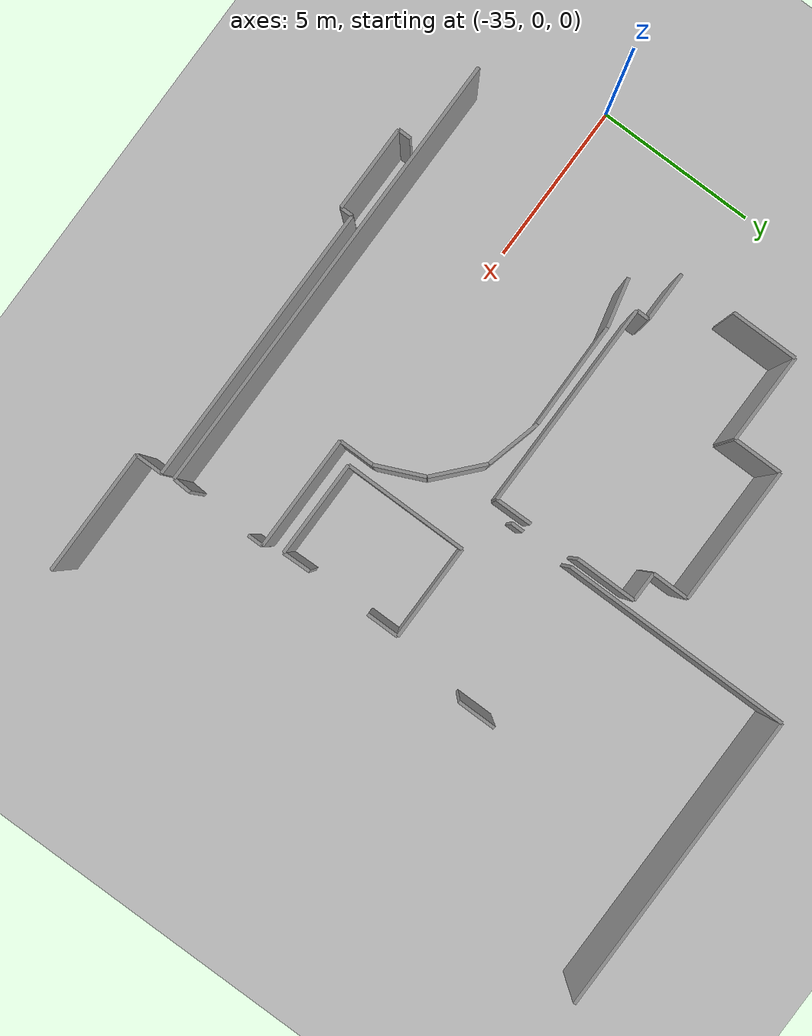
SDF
<sdf version="1.6">
 <world name="default">
  <model name="ground_plane">
   <static>1</static>
   <link name="link">
    <collision name="collision">
     <geometry><plane><normal>0 0 1</normal><size>100 100</size></plane></geometry>
     <surface><friction><ode><mu>100</mu><mu2>50</mu2></ode></friction></surface>
    </collision>
    <visual name="visual">
     <cast_shadows>0</cast_shadows>
     <geometry><plane><normal>0 0 1</normal><size>100 100</size></plane></geometry>
     <material>
      <script><uri>file://media/materials/scripts/gazebo.material</uri><name>Gazebo/Grey</name></script>
     </material>
    </visual>
   </link>
  </model>
  <model name="0510032271_A_40_1_105">
   <static>1</static>
   <link name="Wall_28">
    <collision name="Wall_28_Collision">
     <geometry><box><size>6.33456881013 0.1 2.5</size></box></geometry>
     <pose>3.16728440507 0 1.25 0 0 0</pose>
    </collision>
    <visual name="Wall_28_Visual">
     <pose>3.16728440507 0 1.25 0 0 0</pose>
     <geometry><box><size>6.33456881013 0.1 2.5</size></box></geometry>
     <material>
      <script><uri>file://media/materials/scripts/gazebo.material</uri><name>Gazebo/Grey</name></script>
      <ambient>1 1 1 1</ambient>
     </material>
    </visual>
    <pose>23.5009266076 -9.76542865121 0 0 0 3.14159265359</pose>
   </link>
   <link name="Wall_29">
    <collision name="Wall_29_Collision">
     <geometry><box><size>0.393490898936 0.1 2.5</size></box></geometry>
     <pose>0.196745449468 0 1.25 0 0 0</pose>
    </collision>
    <visual name="Wall_29_Visual">
     <pose>0.196745449468 0 1.25 0 0 0</pose>
     <geometry><box><size>0.393490898936 0.1 2.5</size></box></geometry>
     <material>
      <script><uri>file://media/materials/scripts/gazebo.material</uri><name>Gazebo/Grey</name></script>
      <ambient>1 1 1 1</ambient>
     </material>
    </visual>
    <pose>17.1663577975 -9.76542865121 0 0 0 1.57079632679</pose>
   </link>
   <link name="Wall_30">
    <collision name="Wall_30_Collision">
     <geometry><box><size>1.50681627783 0.1 2.5</size></box></geometry>
     <pose>0.753408138915 0 1.25 0 0 0</pose>
    </collision>
    <visual name="Wall_30_Visual">
     <pose>0.753408138915 0 1.25 0 0 0</pose>
     <geometry><box><size>1.50681627783 0.1 2.5</size></box></geometry>
     <material>
      <script><uri>file://media/materials/scripts/gazebo.material</uri><name>Gazebo/Grey</name></script>
      <ambient>1 1 1 1</ambient>
     </material>
    </visual>
    <pose>17.1663577975 -9.37193775228 0 0 0 3.14159265359</pose>
   </link>
   <link name="Wall_31">
    <collision name="Wall_31_Collision">
     <geometry><box><size>2.06125764769 0.1 2.5</size></box></geometry>
     <pose>1.03062882384 0 1.25 0 0 0</pose>
    </collision>
    <visual name="Wall_31_Visual">
     <pose>1.03062882384 0 1.25 0 0 0</pose>
     <geometry><box><size>2.06125764769 0.1 2.5</size></box></geometry>
     <material>
      <script><uri>file://media/materials/scripts/gazebo.material</uri><name>Gazebo/Grey</name></script>
      <ambient>1 1 1 1</ambient>
     </material>
    </visual>
    <pose>15.6595415196 -7.63308877662 0 0 0 1.57079632679</pose>
   </link>
   <link name="Wall_32">
    <collision name="Wall_32_Collision">
     <geometry><box><size>2.71876824655 0.1 2.5</size></box></geometry>
     <pose>1.35938412328 0 1.25 0 0 0</pose>
    </collision>
    <visual name="Wall_32_Visual">
     <pose>1.35938412328 0 1.25 0 0 0</pose>
     <geometry><box><size>2.71876824655 0.1 2.5</size></box></geometry>
     <material>
      <script><uri>file://media/materials/scripts/gazebo.material</uri><name>Gazebo/Grey</name></script>
      <ambient>1 1 1 1</ambient>
     </material>
    </visual>
    <pose>15.6595415196 -5.57183112894 0 0 0 0.0</pose>
   </link>
   <link name="Wall_33">
    <collision name="Wall_33_Collision">
     <geometry><box><size>1.52090579066 0.1 2.5</size></box></geometry>
     <pose>0.760452895331 0 1.25 0 0 0</pose>
    </collision>
    <visual name="Wall_33_Visual">
     <pose>0.760452895331 0 1.25 0 0 0</pose>
     <geometry><box><size>1.52090579066 0.1 2.5</size></box></geometry>
     <material>
      <script><uri>file://media/materials/scripts/gazebo.material</uri><name>Gazebo/Grey</name></script>
      <ambient>1 1 1 1</ambient>
     </material>
    </visual>
    <pose>18.3783097662 -5.57183112894 0 0 0 1.57079632679</pose>
   </link>
   <link name="Wall_34">
    <collision name="Wall_34_Collision">
     <geometry><box><size>4.21555685309 0.1 2.5</size></box></geometry>
     <pose>2.10777842654 0 1.25 0 0 0</pose>
    </collision>
    <visual name="Wall_34_Visual">
     <pose>2.10777842654 0 1.25 0 0 0</pose>
     <geometry><box><size>4.21555685309 0.1 2.5</size></box></geometry>
     <material>
      <script><uri>file://media/materials/scripts/gazebo.material</uri><name>Gazebo/Grey</name></script>
      <ambient>1 1 1 1</ambient>
     </material>
    </visual>
    <pose>18.3783097662 -4.05092533828 0 0 0 0.0</pose>
   </link>
   <link name="Wall_35">
    <collision name="Wall_35_Collision">
     <geometry><box><size>1.12969967759 0.1 2.5</size></box></geometry>
     <pose>0.564849838796 0 1.25 0 0 0</pose>
    </collision>
    <visual name="Wall_35_Visual">
     <pose>0.564849838796 0 1.25 0 0 0</pose>
     <geometry><box><size>1.12969967759 0.1 2.5</size></box></geometry>
     <material>
      <script><uri>file://media/materials/scripts/gazebo.material</uri><name>Gazebo/Grey</name></script>
      <ambient>1 1 1 1</ambient>
     </material>
    </visual>
    <pose>22.5938666193 -4.05092533828 0 0 0 -1.57079632679</pose>
   </link>
   <link name="Wall_36">
    <collision name="Wall_36_Collision">
     <geometry><box><size>0.89614378919 0.1 2.5</size></box></geometry>
     <pose>0.448071894595 0 1.25 0 0 0</pose>
    </collision>
    <visual name="Wall_36_Visual">
     <pose>0.448071894595 0 1.25 0 0 0</pose>
     <geometry><box><size>0.89614378919 0.1 2.5</size></box></geometry>
     <material>
      <script><uri>file://media/materials/scripts/gazebo.material</uri><name>Gazebo/Grey</name></script>
      <ambient>1 1 1 1</ambient>
     </material>
    </visual>
    <pose>22.5938666193 -5.18062501587 0 0 0 0.0</pose>
   </link>
   <link name="Wall_37">
    <collision name="Wall_37_Collision">
     <geometry><box><size>1.8819019573 0.1 2.5</size></box></geometry>
     <pose>0.94095097865 0 1.25 0 0 0</pose>
    </collision>
    <visual name="Wall_37_Visual">
     <pose>0.94095097865 0 1.25 0 0 0</pose>
     <geometry><box><size>1.8819019573 0.1 2.5</size></box></geometry>
     <material>
      <script><uri>file://media/materials/scripts/gazebo.material</uri><name>Gazebo/Grey</name></script>
      <ambient>1 1 1 1</ambient>
     </material>
    </visual>
    <pose>23.4900104085 -5.18062501587 0 0 0 -1.57079632679</pose>
   </link>
   <link name="Wall_38">
    <collision name="Wall_38_Collision">
     <geometry><box><size>1.1294985643 0.1 2.5</size></box></geometry>
     <pose>0.564749282152 0 1.25 0 0 0</pose>
    </collision>
    <visual name="Wall_38_Visual">
     <pose>0.564749282152 0 1.25 0 0 0</pose>
     <geometry><box><size>1.1294985643 0.1 2.5</size></box></geometry>
     <material>
      <script><uri>file://media/materials/scripts/gazebo.material</uri><name>Gazebo/Grey</name></script>
      <ambient>1 1 1 1</ambient>
     </material>
    </visual>
    <pose>23.4900104085 -8.63598283872 0 0 0 -1.56113153445</pose>
   </link>
   <link name="Wall_40">
    <collision name="Wall_40_Collision">
     <geometry><box><size>1.18897717753 0.1 2.5</size></box></geometry>
     <pose>0.594488588764 0 1.25 0 0 0</pose>
    </collision>
    <visual name="Wall_40_Visual">
     <pose>0.594488588764 0 1.25 0 0 0</pose>
     <geometry><box><size>1.18897717753 0.1 2.5</size></box></geometry>
     <material>
      <script><uri>file://media/materials/scripts/gazebo.material</uri><name>Gazebo/Grey</name></script>
      <ambient>1 1 1 1</ambient>
     </material>
    </visual>
    <pose>28.4906450712 -6.15229367114 0 0 0 -1.57079632679</pose>
   </link>
   <link name="Wall_43">
    <collision name="Wall_43_Collision">
     <geometry><box><size>0.399202863598 0.1 2.5</size></box></geometry>
     <pose>0.199601431799 0 1.25 0 0 0</pose>
    </collision>
    <visual name="Wall_43_Visual">
     <pose>0.199601431799 0 1.25 0 0 0</pose>
     <geometry><box><size>0.399202863598 0.1 2.5</size></box></geometry>
     <material>
      <script><uri>file://media/materials/scripts/gazebo.material</uri><name>Gazebo/Grey</name></script>
      <ambient>1 1 1 1</ambient>
     </material>
    </visual>
    <pose>23.7758625067 -9.07148841106 0 0 0 1.57079632679</pose>
   </link>
   <link name="Wall_44">
    <collision name="Wall_44_Collision">
     <geometry><box><size>7.08994440354 0.1 2.5</size></box></geometry>
     <pose>3.54497220177 0 1.25 0 0 0</pose>
    </collision>
    <visual name="Wall_44_Visual">
     <pose>3.54497220177 0 1.25 0 0 0</pose>
     <geometry><box><size>7.08994440354 0.1 2.5</size></box></geometry>
     <material>
      <script><uri>file://media/materials/scripts/gazebo.material</uri><name>Gazebo/Grey</name></script>
      <ambient>1 1 1 1</ambient>
     </material>
    </visual>
    <pose>23.7758625067 -7.08994440354 0 0 0 1.57079632679</pose>
   </link>
   <link name="Wall_45">
    <collision name="Wall_45_Collision">
     <geometry><box><size>9.40519407987 0.1 2.5</size></box></geometry>
     <pose>4.70259703993 0 1.25 0 0 0</pose>
    </collision>
    <visual name="Wall_45_Visual">
     <pose>4.70259703993 0 1.25 0 0 0</pose>
     <geometry><box><size>9.40519407987 0.1 2.5</size></box></geometry>
     <material>
      <script><uri>file://media/materials/scripts/gazebo.material</uri><name>Gazebo/Grey</name></script>
      <ambient>1 1 1 1</ambient>
     </material>
    </visual>
    <pose>23.7758625067 -0.0 0 0 0 0.0</pose>
   </link>
   <link name="Wall_47">
    <collision name="Wall_47_Collision">
     <geometry><box><size>13.7921098728 0.1 2.5</size></box></geometry>
     <pose>6.89605493641 0 1.25 0 0 0</pose>
    </collision>
    <visual name="Wall_47_Visual">
     <pose>6.89605493641 0 1.25 0 0 0</pose>
     <geometry><box><size>13.7921098728 0.1 2.5</size></box></geometry>
     <material>
      <script><uri>file://media/materials/scripts/gazebo.material</uri><name>Gazebo/Grey</name></script>
      <ambient>1 1 1 1</ambient>
     </material>
    </visual>
    <pose>28.2327181336 -17.0886750781 0 0 0 3.14159265359</pose>
   </link>
   <link name="Wall_52">
    <collision name="Wall_52_Collision">
     <geometry><box><size>1.46435003883 0.1 2.5</size></box></geometry>
     <pose>0.732175019415 0 1.25 0 0 0</pose>
    </collision>
    <visual name="Wall_52_Visual">
     <pose>0.732175019415 0 1.25 0 0 0</pose>
     <geometry><box><size>1.46435003883 0.1 2.5</size></box></geometry>
     <material>
      <script><uri>file://media/materials/scripts/gazebo.material</uri><name>Gazebo/Grey</name></script>
      <ambient>1 1 1 1</ambient>
     </material>
    </visual>
    <pose>16.5895762992 -10.4680003046 0 0 0 0.235875390923</pose>
   </link>
   <link name="Wall_53">
    <collision name="Wall_53_Collision">
     <geometry><box><size>3.20102950671 0.1 2.5</size></box></geometry>
     <pose>1.60051475336 0 1.25 0 0 0</pose>
    </collision>
    <visual name="Wall_53_Visual">
     <pose>1.60051475336 0 1.25 0 0 0</pose>
     <geometry><box><size>3.20102950671 0.1 2.5</size></box></geometry>
     <material>
      <script><uri>file://media/materials/scripts/gazebo.material</uri><name>Gazebo/Grey</name></script>
      <ambient>1 1 1 1</ambient>
     </material>
    </visual>
    <pose>18.0133786906 -10.1257901551 0 0 0 0.0103497910399</pose>
   </link>
   <link name="Wall_54">
    <collision name="Wall_54_Collision">
     <geometry><box><size>1.69732537318 0.1 2.5</size></box></geometry>
     <pose>0.848662686589 0 1.25 0 0 0</pose>
    </collision>
    <visual name="Wall_54_Visual">
     <pose>0.848662686589 0 1.25 0 0 0</pose>
     <geometry><box><size>1.69732537318 0.1 2.5</size></box></geometry>
     <material>
      <script><uri>file://media/materials/scripts/gazebo.material</uri><name>Gazebo/Grey</name></script>
      <ambient>1 1 1 1</ambient>
     </material>
    </visual>
    <pose>21.2142367546 -10.0926607601 0 0 0 -0.249748909715</pose>
   </link>
   <link name="Wall_55">
    <collision name="Wall_55_Collision">
     <geometry><box><size>1.69662414504 0.1 2.5</size></box></geometry>
     <pose>0.848312072518 0 1.25 0 0 0</pose>
    </collision>
    <visual name="Wall_55_Visual">
     <pose>0.848312072518 0 1.25 0 0 0</pose>
     <geometry><box><size>1.69662414504 0.1 2.5</size></box></geometry>
     <material>
      <script><uri>file://media/materials/scripts/gazebo.material</uri><name>Gazebo/Grey</name></script>
      <ambient>1 1 1 1</ambient>
     </material>
    </visual>
    <pose>22.8589017796 -10.5121728314 0 0 0 -0.72553020833</pose>
   </link>
   <link name="Wall_56">
    <collision name="Wall_56_Collision">
     <geometry><box><size>1.51185169814 0.1 2.5</size></box></geometry>
     <pose>0.755925849072 0 1.25 0 0 0</pose>
    </collision>
    <visual name="Wall_56_Visual">
     <pose>0.755925849072 0 1.25 0 0 0</pose>
     <geometry><box><size>1.51185169814 0.1 2.5</size></box></geometry>
     <material>
      <script><uri>file://media/materials/scripts/gazebo.material</uri><name>Gazebo/Grey</name></script>
      <ambient>1 1 1 1</ambient>
     </material>
    </visual>
    <pose>24.12822726 -11.6379376 0 0 0 -1.14966507822</pose>
   </link>
   <link name="Wall_57">
    <collision name="Wall_57_Collision">
     <geometry><box><size>1.08171917443 0.1 2.5</size></box></geometry>
     <pose>0.540859587215 0 1.25 0 0 0</pose>
    </collision>
    <visual name="Wall_57_Visual">
     <pose>0.540859587215 0 1.25 0 0 0</pose>
     <geometry><box><size>1.08171917443 0.1 2.5</size></box></geometry>
     <material>
      <script><uri>file://media/materials/scripts/gazebo.material</uri><name>Gazebo/Grey</name></script>
      <ambient>1 1 1 1</ambient>
     </material>
    </visual>
    <pose>24.7462618365 -13.0176943972 0 0 0 -1.57079632679</pose>
   </link>
   <link name="Wall_58">
    <collision name="Wall_58_Collision">
     <geometry><box><size>3.51907796197 0.1 2.5</size></box></geometry>
     <pose>1.75953898099 0 1.25 0 0 0</pose>
    </collision>
    <visual name="Wall_58_Visual">
     <pose>1.75953898099 0 1.25 0 0 0</pose>
     <geometry><box><size>3.51907796197 0.1 2.5</size></box></geometry>
     <material>
      <script><uri>file://media/materials/scripts/gazebo.material</uri><name>Gazebo/Grey</name></script>
      <ambient>1 1 1 1</ambient>
     </material>
    </visual>
    <pose>24.7462618365 -14.0994135716 0 0 0 0.0</pose>
   </link>
   <link name="Wall_59">
    <collision name="Wall_59_Collision">
     <geometry><box><size>0.477901043386 0.1 2.5</size></box></geometry>
     <pose>0.238950521693 0 1.25 0 0 0</pose>
    </collision>
    <visual name="Wall_59_Visual">
     <pose>0.238950521693 0 1.25 0 0 0</pose>
     <geometry><box><size>0.477901043386 0.1 2.5</size></box></geometry>
     <material>
      <script><uri>file://media/materials/scripts/gazebo.material</uri><name>Gazebo/Grey</name></script>
      <ambient>1 1 1 1</ambient>
     </material>
    </visual>
    <pose>28.2653397984 -14.0994135716 0 0 0 -1.57079632679</pose>
   </link>
   <link name="Wall_60">
    <collision name="Wall_60_Collision">
     <geometry><box><size>0.564777282914 0.1 2.5</size></box></geometry>
     <pose>0.282388641457 0 1.25 0 0 0</pose>
    </collision>
    <visual name="Wall_60_Visual">
     <pose>0.282388641457 0 1.25 0 0 0</pose>
     <geometry><box><size>0.564777282914 0.1 2.5</size></box></geometry>
     <material>
      <script><uri>file://media/materials/scripts/gazebo.material</uri><name>Gazebo/Grey</name></script>
      <ambient>1 1 1 1</ambient>
     </material>
    </visual>
    <pose>28.2653397984 -16.5248406997 0 0 0 -1.62858872053</pose>
   </link>
   <link name="Wall_89">
    <collision name="Wall_89_Collision">
     <geometry><box><size>2.94483511462 0.1 2.5</size></box></geometry>
     <pose>1.47241755731 0 1.25 0 0 0</pose>
    </collision>
    <visual name="Wall_89_Visual">
     <pose>1.47241755731 0 1.25 0 0 0</pose>
     <geometry><box><size>2.94483511462 0.1 2.5</size></box></geometry>
     <material>
      <script><uri>file://media/materials/scripts/gazebo.material</uri><name>Gazebo/Grey</name></script>
      <ambient>1 1 1 1</ambient>
     </material>
    </visual>
    <pose>28.0807798736 -13.5303749587 0 0 0 3.14159265359</pose>
   </link>
   <link name="Wall_90">
    <collision name="Wall_90_Collision">
     <geometry><box><size>3.81292681069 0.1 2.5</size></box></geometry>
     <pose>1.90646340535 0 1.25 0 0 0</pose>
    </collision>
    <visual name="Wall_90_Visual">
     <pose>1.90646340535 0 1.25 0 0 0</pose>
     <geometry><box><size>3.81292681069 0.1 2.5</size></box></geometry>
     <material>
      <script><uri>file://media/materials/scripts/gazebo.material</uri><name>Gazebo/Grey</name></script>
      <ambient>1 1 1 1</ambient>
     </material>
    </visual>
    <pose>25.135944759 -13.5303749587 0 0 0 1.57079632679</pose>
   </link>
   <link name="Wall_91">
    <collision name="Wall_91_Collision">
     <geometry><box><size>2.92401817674 0.1 2.5</size></box></geometry>
     <pose>1.46200908837 0 1.25 0 0 0</pose>
    </collision>
    <visual name="Wall_91_Visual">
     <pose>1.46200908837 0 1.25 0 0 0</pose>
     <geometry><box><size>2.92401817674 0.1 2.5</size></box></geometry>
     <material>
      <script><uri>file://media/materials/scripts/gazebo.material</uri><name>Gazebo/Grey</name></script>
      <ambient>1 1 1 1</ambient>
     </material>
    </visual>
    <pose>25.135944759 -9.71744814805 0 0 0 0.0</pose>
   </link>
   <link name="Wall_92">
    <collision name="Wall_92_Collision">
     <geometry><box><size>1.00771749892 0.1 2.5</size></box></geometry>
     <pose>0.503858749461 0 1.25 0 0 0</pose>
    </collision>
    <visual name="Wall_92_Visual">
     <pose>0.503858749461 0 1.25 0 0 0</pose>
     <geometry><box><size>1.00771749892 0.1 2.5</size></box></geometry>
     <material>
      <script><uri>file://media/materials/scripts/gazebo.material</uri><name>Gazebo/Grey</name></script>
      <ambient>1 1 1 1</ambient>
     </material>
    </visual>
    <pose>28.0599629357 -9.71744814805 0 0 0 -1.57079632679</pose>
   </link>
   <link name="Wall_93">
    <collision name="Wall_93_Collision">
     <geometry><box><size>0.86453437926 0.1 2.5</size></box></geometry>
     <pose>0.43226718963 0 1.25 0 0 0</pose>
    </collision>
    <visual name="Wall_93_Visual">
     <pose>0.43226718963 0 1.25 0 0 0</pose>
     <geometry><box><size>0.86453437926 0.1 2.5</size></box></geometry>
     <material>
      <script><uri>file://media/materials/scripts/gazebo.material</uri><name>Gazebo/Grey</name></script>
      <ambient>1 1 1 1</ambient>
     </material>
    </visual>
    <pose>28.0599629357 -12.6660912391 0 0 0 -1.54671521392</pose>
   </link>
   <link name="Wall_102">
    <collision name="Wall_102_Collision">
     <geometry><box><size>0.400599121627 0.1 2.5</size></box></geometry>
     <pose>0.200299560813 0 1.25 0 0 0</pose>
    </collision>
    <visual name="Wall_102_Visual">
     <pose>0.200299560813 0 1.25 0 0 0</pose>
     <geometry><box><size>0.400599121627 0.1 2.5</size></box></geometry>
     <material>
      <script><uri>file://media/materials/scripts/gazebo.material</uri><name>Gazebo/Grey</name></script>
      <ambient>1 1 1 1</ambient>
     </material>
    </visual>
    <pose>17.0733162398 -17.4232692747 0 0 0 -1.57079632679</pose>
   </link>
   <link name="Wall_103">
    <collision name="Wall_103_Collision">
     <geometry><box><size>2.61227183874 0.1 2.5</size></box></geometry>
     <pose>1.30613591937 0 1.25 0 0 0</pose>
    </collision>
    <visual name="Wall_103_Visual">
     <pose>1.30613591937 0 1.25 0 0 0</pose>
     <geometry><box><size>2.61227183874 0.1 2.5</size></box></geometry>
     <material>
      <script><uri>file://media/materials/scripts/gazebo.material</uri><name>Gazebo/Grey</name></script>
      <ambient>1 1 1 1</ambient>
     </material>
    </visual>
    <pose>17.0733162398 -17.8238683963 0 0 0 0.0</pose>
   </link>
   <link name="Wall_104">
    <collision name="Wall_104_Collision">
     <geometry><box><size>0.375466477114 0.1 2.5</size></box></geometry>
     <pose>0.187733238557 0 1.25 0 0 0</pose>
    </collision>
    <visual name="Wall_104_Visual">
     <pose>0.187733238557 0 1.25 0 0 0</pose>
     <geometry><box><size>0.375466477114 0.1 2.5</size></box></geometry>
     <material>
      <script><uri>file://media/materials/scripts/gazebo.material</uri><name>Gazebo/Grey</name></script>
      <ambient>1 1 1 1</ambient>
     </material>
    </visual>
    <pose>19.6855880785 -17.8238683963 0 0 0 1.57079632679</pose>
   </link>
   <link name="Wall_105">
    <collision name="Wall_105_Collision">
     <geometry><box><size>8.63077860425 0.1 2.5</size></box></geometry>
     <pose>4.31538930212 0 1.25 0 0 0</pose>
    </collision>
    <visual name="Wall_105_Visual">
     <pose>4.31538930212 0 1.25 0 0 0</pose>
     <geometry><box><size>8.63077860425 0.1 2.5</size></box></geometry>
     <material>
      <script><uri>file://media/materials/scripts/gazebo.material</uri><name>Gazebo/Grey</name></script>
      <ambient>1 1 1 1</ambient>
     </material>
    </visual>
    <pose>19.6855880785 -17.4484019192 0 0 0 0.0</pose>
   </link>
   <link name="Wall_106">
    <collision name="Wall_106_Collision">
     <geometry><box><size>0.836358559062 0.1 2.5</size></box></geometry>
     <pose>0.418179279531 0 1.25 0 0 0</pose>
    </collision>
    <visual name="Wall_106_Visual">
     <pose>0.418179279531 0 1.25 0 0 0</pose>
     <geometry><box><size>0.836358559062 0.1 2.5</size></box></geometry>
     <material>
      <script><uri>file://media/materials/scripts/gazebo.material</uri><name>Gazebo/Grey</name></script>
      <ambient>1 1 1 1</ambient>
     </material>
    </visual>
    <pose>28.3163666827 -17.4484019192 0 0 0 -1.57079632679</pose>
   </link>
   <link name="Wall_107">
    <collision name="Wall_107_Collision">
     <geometry><box><size>3.86991952476 0.1 2.5</size></box></geometry>
     <pose>1.93495976238 0 1.25 0 0 0</pose>
    </collision>
    <visual name="Wall_107_Visual">
     <pose>1.93495976238 0 1.25 0 0 0</pose>
     <geometry><box><size>3.86991952476 0.1 2.5</size></box></geometry>
     <material>
      <script><uri>file://media/materials/scripts/gazebo.material</uri><name>Gazebo/Grey</name></script>
      <ambient>1 1 1 1</ambient>
     </material>
    </visual>
    <pose>28.3163666827 -18.2847604783 0 0 0 0.0</pose>
   </link>
   <pose>-47.55 13.7791424437 0 0 0 0</pose>
  </model>
 </world>
</sdf>
